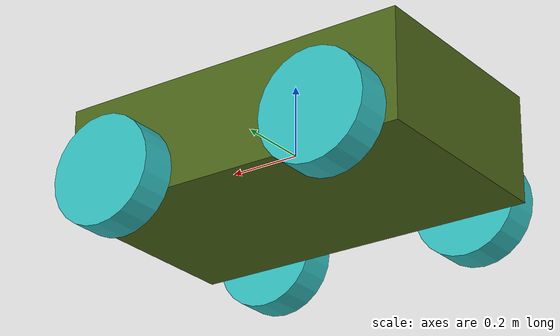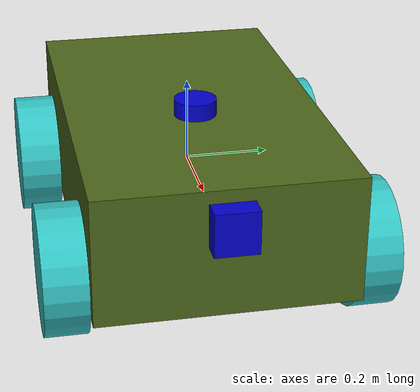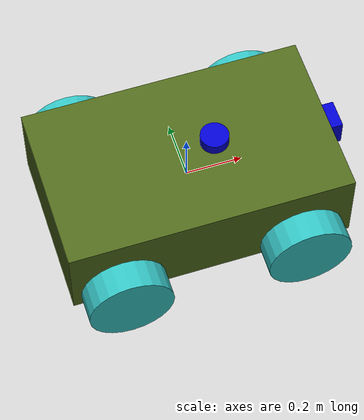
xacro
<?xml version="1.0"?>

<robot name="differential_drive_robot" xmlns:xacro="http://www.ros.org/wiki/xacro">

<xacro:include filename="lidar.xacro" />

<xacro:property name="base_link_x_dim" value="1"/>
<xacro:property name="base_link_y_dim" value="0.6"/>
<xacro:property name="base_link_z_dim" value="0.3"/>

<xacro:property name="wheel_link_radius" value="0.15"/>
<xacro:property name="wheel_link_length" value="0.1"/>
<xacro:property name="wheel_link_z_location" value="-0.1"/>

<xacro:property name="body_density" value="2710.0"/>
<xacro:property name="wheel_density" value="2710.0"/>

<xacro:property name="pi_const" value="3.14159265"/>

<xacro:property name="body_mass" value="${body_density*base_link_x_dim*
base_link_y_dim*base_link_z_dim}"/>
<xacro:property name="wheel_mass" value="${wheel_density*pi_const*
wheel_link_radius*wheel_link_radius*wheel_link_length}"/>

<xacro:property name="Iz_wheel" value="${0.5*wheel_mass*wheel_link_radius*wheel_link_radius}"/>
<xacro:property name="I_wheel" value="${(1.0/12.0)*wheel_mass*(3.0*wheel_link_radius*wheel_link_radius+wheel_link_length*wheel_link_length)}"/>

<xacro:macro name="inertia_wheel">
    <inertial>
        <origin xyz="0 0 0" rpy="0 0 0"/>
        <mass value="${wheel_mass}"/>
        <inertia ixx="${I_wheel}" ixy="0.0" ixz="0.0" iyy="${I_wheel}" iyz="0" izz="${Iz_wheel}" />
    </inertial>
</xacro:macro>

<xacro:include filename="$(find slam_robot)/urdf/robot.gazebo" />

<link name="dummy"></link>

<joint name="dummy_joint" type="fixed">
    <parent link="dummy"/>
    <child link="base_link"/>
</joint>

<link name="base_link">
    <visual>
        <geometry>
            <box size="${base_link_x_dim} ${base_link_y_dim} ${base_link_z_dim}" />
        </geometry>
        <origin rpy="0 0 0" xyz="0 0 0" />
		<material name="green">
			<color rgba="0.3 0.4 0.1 1.0"/>
		</material>
    </visual>

    <collision>
        <geometry>
            <box size="${base_link_x_dim} ${base_link_y_dim} ${base_link_z_dim}"/>
        </geometry>
    </collision>

    <inertial>
        <origin xyz="0 0 0" rpy="0 0 0"/>
        <mass value="${body_mass}"/>

        <inertia ixx="${(1/12)*body_mass*(base_link_y_dim*base_link_y_dim+base_link_z_dim*base_link_z_dim)}" ixy="0"
        ixz="0" iyy="${(1/12)*body_mass*(base_link_x_dim*base_link_x_dim+base_link_z_dim*base_link_z_dim)}" iyz="0"
        izz="${(1/12)*body_mass*(base_link_y_dim*base_link_y_dim+base_link_x_dim*base_link_x_dim)}" />
    </inertial>
</link>

<joint name="wheel1_joint" type="continuous" >
	<parent link="base_link"/>
	<child link="wheel1_link" />
	<origin xyz="${-base_link_x_dim/2+1.2*wheel_link_radius} ${-base_link_y_dim/2-wheel_link_length/2} ${wheel_link_z_location}" rpy="0 0 0" />
	<axis xyz="0 1 0"/>
	<limit effort="1000" velocity="1000"/>
	<dynamics damping="1.0" friction="1.0"/>
</joint>

<link name="wheel1_link">
	<visual>
		<origin rpy="1.570795 0 0" xyz="0 0 0"/>
		<geometry>
			<cylinder length="${wheel_link_length}" radius="${wheel_link_radius}" />
		</geometry>
	</visual>

	<collision>
		<origin rpy="1.570795 0 0" xyz="0 0 0"/>
		<geometry>
			<cylinder length="${wheel_link_length}" radius="${wheel_link_radius}"/>
		</geometry>
	</collision>

	<xacro:inertia_wheel />
</link>

<joint name="wheel2_joint" type="continuous" >
	<parent link="base_link"/>
	<child link="wheel2_link" />
	<origin xyz="${-base_link_x_dim/2+1.2*wheel_link_radius} ${base_link_y_dim/2+wheel_link_length/2} ${wheel_link_z_location}" rpy="0 0 0" />
	<axis xyz="0 1 0"/>
	<limit effort="1000" velocity="1000"/>
	<dynamics damping="1.0" friction="1.0"/>
</joint>

<link name="wheel2_link">
	<visual>
		<origin rpy="1.570795 0 0" xyz="0 0 0"/>
		<geometry>
			<cylinder length="${wheel_link_length}" radius="${wheel_link_radius}" />
		</geometry>
	</visual>

	<collision>
		<origin rpy="1.570795 0 0" xyz="0 0 0"/>
		<geometry>
			<cylinder length="${wheel_link_length}" radius="${wheel_link_radius}"/>
		</geometry>
	</collision>

	<xacro:inertia_wheel />
</link>

<joint name="wheel3_joint" type="continuous" >
	<parent link="base_link"/>
	<child link="wheel3_link" />
	<origin xyz="${base_link_x_dim/2-1.2*wheel_link_radius} ${-base_link_y_dim/2-wheel_link_length/2} ${wheel_link_z_location}" rpy="0 0 0" />
	<axis xyz="0 1 0"/>
	<limit effort="1000" velocity="1000"/>
	<dynamics damping="1.0" friction="1.0"/>
</joint>

<link name="wheel3_link">
	<visual>
		<origin rpy="1.570795 0 0" xyz="0 0 0"/>
		<geometry>
			<cylinder length="${wheel_link_length}" radius="${wheel_link_radius}" />
		</geometry>
	</visual>

	<collision>
		<origin rpy="1.570795 0 0" xyz="0 0 0"/>
		<geometry>
			<cylinder length="${wheel_link_length}" radius="${wheel_link_radius}"/>
		</geometry>
	</collision>

	<xacro:inertia_wheel />
</link>

<joint name="wheel4_joint" type="continuous" >
	<parent link="base_link"/>
	<child link="wheel4_link" />
	<origin xyz="${base_link_x_dim/2-1.2*wheel_link_radius} ${base_link_y_dim/2+wheel_link_length/2} ${wheel_link_z_location}" rpy="0 0 0" />
	<axis xyz="0 1 0"/>
	<limit effort="1000" velocity="1000"/>
	<dynamics damping="1.0" friction="1.0"/>
</joint>

<link name="wheel4_link">
	<visual>
		<origin rpy="1.570795 0 0" xyz="0 0 0"/>
		<geometry>
			<cylinder length="${wheel_link_length}" radius="${wheel_link_radius}" />
		</geometry>
	</visual>

	<collision>
		<origin rpy="1.570795 0 0" xyz="0 0 0"/>
		<geometry>
			<cylinder length="${wheel_link_length}" radius="${wheel_link_radius}"/>
		</geometry>
	</collision>

	<xacro:inertia_wheel />
</link>

<link name="camera_link">
    <visual>
        <geometry>
            <box size="0.1 0.1 0.1"/> <!-- Adjust size as needed -->
        </geometry>
        <origin xyz="0 0 0" rpy="0 0 0"/>
		<material name="blue">
			<color rgba="0.0 0.0 0.8 1.0"/>
		</material>
    </visual>
    <collision>
        <geometry>
            <box size="0.1 0.1 0.1"/>
        </geometry>
    </collision>
    <inertial>
        <origin xyz="0 0 0" rpy="0 0 0"/>
        <mass value="0.1"/> <!-- Adjust mass as needed -->
        <inertia ixx="0.001" iyy="0.001" izz="0.001" ixy="0" ixz="0" iyz="0"/>
    </inertial>
</link>

<joint name="camera_joint" type="fixed">
    <parent link="base_link"/>
    <child link="camera_link"/>
    <origin xyz="0.5 0 0.07" rpy="0 0 0"/>
</joint>

</robot>

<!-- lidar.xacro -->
<robot xmlns:xacro="http://www.ros.org/wiki/xacro">

    <joint name="laser_joint" type="fixed">
        <parent link="base_link"/>
        <child link="laser_frame" />
        <origin xyz="0.1 0 0.175" rpy="0 0 0" />
    </joint>

    <link name="laser_frame">
        <visual>
         <geometry>
            <cylinder radius="0.05" length="0.04"/>
         </geometry>
        <material name="blue">
            <color rgba="0.0 0.0 0.8 1.0"/>
        </material>
        </visual>
        <collision>
            <geometry>
                <cylinder radius="0.05" length="0.04"/>
            </geometry>
        </collision>
    </link>
</robot>
